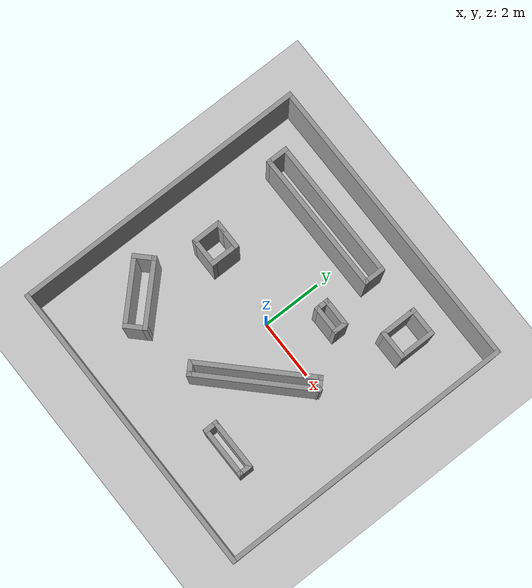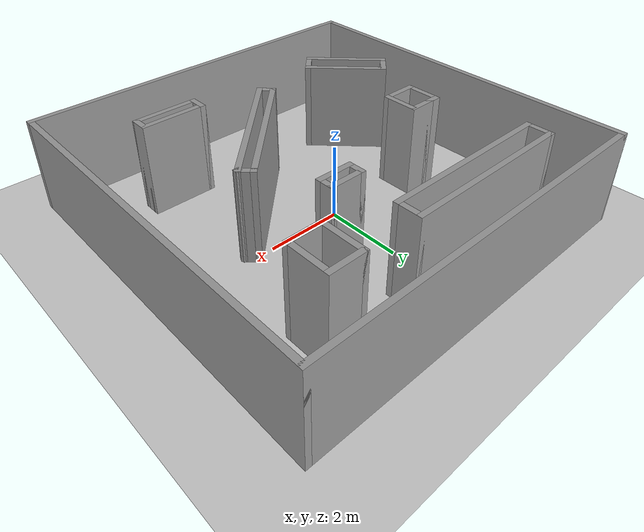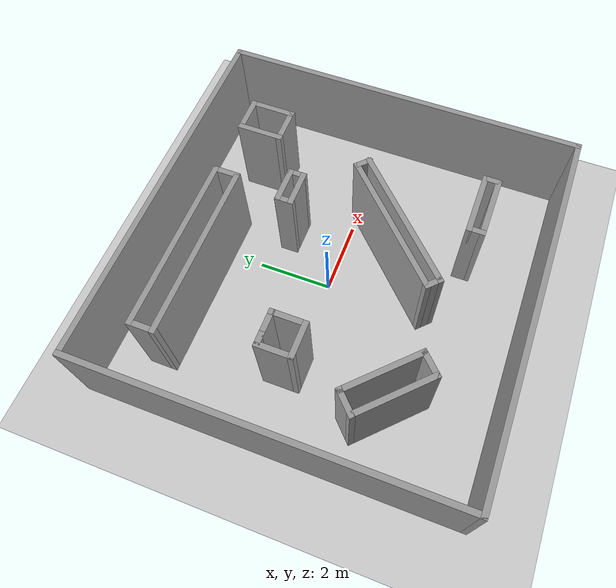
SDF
<sdf version="1.7">
 <world name="default">
  <light name="sun" type="directional">
   <pose>0 0 10 0 -0 0</pose>
   <diffuse>0.8 0.8 0.8 1</diffuse>
   <specular>0.2 0.2 0.2 1</specular>
   <attenuation>
    <range>1000</range>
    <constant>0.9</constant>
    <linear>0.01</linear>
    <quadratic>0.001</quadratic>
   </attenuation>
   <direction>-0.5 0.1 -0.9</direction>
   <spot><inner_angle>0</inner_angle><outer_angle>0</outer_angle><falloff>0</falloff></spot>
  </light>
  <model name="ground_plane">
   <static>1</static>
   <link name="link">
    <collision name="collision">
     <geometry><plane><normal>0 0 1</normal><size>100 100</size></plane></geometry>
     <surface><friction><ode><mu>100</mu><mu2>50</mu2></ode></friction></surface>
    </collision>
    <visual name="visual">
     <cast_shadows>0</cast_shadows>
     <geometry><plane><normal>0 0 1</normal><size>100 100</size></plane></geometry>
     <material>
      <script><uri>file://media/materials/scripts/gazebo.material</uri><name>Gazebo/Grey</name></script>
     </material>
    </visual>
   </link>
  </model>
  <gravity>0 0 -9.8</gravity>
  <magnetic_field>6e-06 2.3e-05 -4.2e-05</magnetic_field>
  <atmosphere type="adiabatic"/>
  <physics type="ode">
   <max_step_size>0.001</max_step_size>
   <real_time_factor>1</real_time_factor>
   <real_time_update_rate>1000</real_time_update_rate>
  </physics>
  <scene><ambient>0.4 0.4 0.4 1</ambient><background>0.7 0.7 0.7 1</background><shadows>1</shadows></scene>
  <audio><device>default</device></audio>
  <spherical_coordinates>
   <surface_model>EARTH_WGS84</surface_model>
   <latitude_deg>0</latitude_deg>
   <longitude_deg>0</longitude_deg>
   <elevation>0</elevation>
   <heading_deg>0</heading_deg>
  </spherical_coordinates>
  <model name="room">
   <pose>0.149799 -0.283213 0 0 -0 0</pose>
   <link name="Wall_0">
    <collision name="Wall_0_Collision">
     <geometry><box><size>10 0.15 2.5</size></box></geometry>
     <pose>0 0 1.25 0 -0 0</pose>
    </collision>
    <visual name="Wall_0_Visual">
     <pose>0 0 1.25 0 -0 0</pose>
     <geometry><box><size>10 0.15 2.5</size></box></geometry>
     <material>
      <script><uri>file://media/materials/scripts/gazebo.material</uri><name>Gazebo/Grey</name></script>
      <ambient>1 1 1 1</ambient>
     </material>
     <meta><layer>0</layer></meta>
    </visual>
    <pose>0 4.925 0 0 -0 0</pose>
   </link>
   <link name="Wall_1">
    <collision name="Wall_1_Collision">
     <geometry><box><size>10 0.15 2.5</size></box></geometry>
     <pose>0 0 1.25 0 -0 0</pose>
    </collision>
    <visual name="Wall_1_Visual">
     <pose>0 0 1.25 0 -0 0</pose>
     <geometry><box><size>10 0.15 2.5</size></box></geometry>
     <material>
      <script><uri>file://media/materials/scripts/gazebo.material</uri><name>Gazebo/Grey</name></script>
      <ambient>1 1 1 1</ambient>
     </material>
     <meta><layer>0</layer></meta>
    </visual>
    <pose>4.925 -0 0 0 -0 -1.5708</pose>
   </link>
   <link name="Wall_10">
    <collision name="Wall_10_Collision">
     <geometry><box><size>4 0.15 2.5</size></box></geometry>
     <pose>0 0 1.25 0 -0 0</pose>
    </collision>
    <visual name="Wall_10_Visual">
     <pose>0 0 1.25 0 -0 0</pose>
     <geometry><box><size>4 0.15 2.5</size></box></geometry>
     <material>
      <script><uri>file://media/materials/scripts/gazebo.material</uri><name>Gazebo/Grey</name></script>
      <ambient>1 1 1 1</ambient>
     </material>
     <meta><layer>0</layer></meta>
    </visual>
    <pose>0.947729 -0.990701 0 0 -0 -2.35619</pose>
   </link>
   <link name="Wall_11">
    <collision name="Wall_11_Collision">
     <geometry><box><size>0.5 0.15 2.5</size></box></geometry>
     <pose>0 0 1.25 0 -0 0</pose>
    </collision>
    <visual name="Wall_11_Visual">
     <pose>0 0 1.25 0 -0 0</pose>
     <geometry><box><size>0.5 0.15 2.5</size></box></geometry>
     <material>
      <script><uri>file://media/materials/scripts/gazebo.material</uri><name>Gazebo/Grey</name></script>
      <ambient>1 1 1 1</ambient>
     </material>
     <meta><layer>0</layer></meta>
    </visual>
    <pose>-0.289708 -2.47562 0 0 -0 -0.785398</pose>
   </link>
   <link name="Wall_12">
    <collision name="Wall_12_Collision">
     <geometry><box><size>4 0.15 2.5</size></box></geometry>
     <pose>0 0 1.25 0 -0 0</pose>
    </collision>
    <visual name="Wall_12_Visual">
     <pose>0 0 1.25 0 -0 0</pose>
     <geometry><box><size>4 0.15 2.5</size></box></geometry>
     <material>
      <script><uri>file://media/materials/scripts/gazebo.material</uri><name>Gazebo/Grey</name></script>
      <ambient>1 1 1 1</ambient>
     </material>
     <meta><layer>0</layer></meta>
    </visual>
    <pose>1.19522 -1.23819 0 0 -0 0.785398</pose>
   </link>
   <link name="Wall_13">
    <collision name="Wall_13_Collision">
     <geometry><box><size>0.15 0.15 2.5</size></box></geometry>
     <pose>0 0 1.25 0 -0 0</pose>
    </collision>
    <visual name="Wall_13_Visual">
     <pose>0 0 1.25 0 -0 0</pose>
     <geometry><box><size>0.15 0.15 2.5</size></box></geometry>
     <material>
      <script><uri>file://media/materials/scripts/gazebo.material</uri><name>Gazebo/Grey</name></script>
      <ambient>1 1 1 1</ambient>
     </material>
     <meta><layer>0</layer></meta>
    </visual>
    <pose>2.5564 0.122992 0 0 -0 0</pose>
   </link>
   <link name="Wall_14">
    <collision name="Wall_14_Collision">
     <geometry><box><size>0.5 0.15 2.5</size></box></geometry>
     <pose>0 0 1.25 0 -0 0</pose>
    </collision>
    <visual name="Wall_14_Visual">
     <pose>0 0 1.25 0 -0 0</pose>
     <geometry><box><size>0.5 0.15 2.5</size></box></geometry>
     <material>
      <script><uri>file://media/materials/scripts/gazebo.material</uri><name>Gazebo/Grey</name></script>
      <ambient>1 1 1 1</ambient>
     </material>
     <meta><layer>0</layer></meta>
    </visual>
    <pose>2.43265 0.246736 0 0 -0 2.35619</pose>
   </link>
   <link name="Wall_16">
    <collision name="Wall_16_Collision">
     <geometry><box><size>0.75 0.15 2.5</size></box></geometry>
     <pose>0 0 1.25 0 -0 0</pose>
    </collision>
    <visual name="Wall_16_Visual">
     <pose>0 0 1.25 0 -0 0</pose>
     <geometry><box><size>0.75 0.15 2.5</size></box></geometry>
     <material>
      <script><uri>file://media/materials/scripts/gazebo.material</uri><name>Gazebo/Grey</name></script>
      <ambient>1 1 1 1</ambient>
     </material>
     <meta><layer>0</layer></meta>
    </visual>
    <pose>-2.61514 0.827804 0 0 -0 0</pose>
   </link>
   <link name="Wall_17">
    <collision name="Wall_17_Collision">
     <geometry><box><size>1 0.15 2.5</size></box></geometry>
     <pose>0 0 1.25 0 -0 0</pose>
    </collision>
    <visual name="Wall_17_Visual">
     <pose>0 0 1.25 0 -0 0</pose>
     <geometry><box><size>1 0.15 2.5</size></box></geometry>
     <material>
      <script><uri>file://media/materials/scripts/gazebo.material</uri><name>Gazebo/Grey</name></script>
      <ambient>1 1 1 1</ambient>
     </material>
     <meta><layer>0</layer></meta>
    </visual>
    <pose>-2.31514 0.402803 0 0 -0 -1.5708</pose>
   </link>
   <link name="Wall_18">
    <collision name="Wall_18_Collision">
     <geometry><box><size>1 0.15 2.5</size></box></geometry>
     <pose>0 0 1.25 0 -0 0</pose>
    </collision>
    <visual name="Wall_18_Visual">
     <pose>0 0 1.25 0 -0 0</pose>
     <geometry><box><size>1 0.15 2.5</size></box></geometry>
     <material>
      <script><uri>file://media/materials/scripts/gazebo.material</uri><name>Gazebo/Grey</name></script>
      <ambient>1 1 1 1</ambient>
     </material>
     <meta><layer>0</layer></meta>
    </visual>
    <pose>-2.74014 -0.022197 0 0 -0 3.14159</pose>
   </link>
   <link name="Wall_19">
    <collision name="Wall_19_Collision">
     <geometry><box><size>1 0.15 2.5</size></box></geometry>
     <pose>0 0 1.25 0 -0 0</pose>
    </collision>
    <visual name="Wall_19_Visual">
     <pose>0 0 1.25 0 -0 0</pose>
     <geometry><box><size>1 0.15 2.5</size></box></geometry>
     <material>
      <script><uri>file://media/materials/scripts/gazebo.material</uri><name>Gazebo/Grey</name></script>
      <ambient>1 1 1 1</ambient>
     </material>
     <meta><layer>0</layer></meta>
    </visual>
    <pose>-3.16514 0.402803 0 0 -0 1.5708</pose>
   </link>
   <link name="Wall_2">
    <collision name="Wall_2_Collision">
     <geometry><box><size>10 0.15 2.5</size></box></geometry>
     <pose>0 0 1.25 0 -0 0</pose>
    </collision>
    <visual name="Wall_2_Visual">
     <pose>0 0 1.25 0 -0 0</pose>
     <geometry><box><size>10 0.15 2.5</size></box></geometry>
     <material>
      <script><uri>file://media/materials/scripts/gazebo.material</uri><name>Gazebo/Grey</name></script>
      <ambient>1 1 1 1</ambient>
     </material>
     <meta><layer>0</layer></meta>
    </visual>
    <pose>0 -4.925 0 0 -0 3.14159</pose>
   </link>
   <link name="Wall_20">
    <collision name="Wall_20_Collision">
     <geometry><box><size>0.4 0.15 2.5</size></box></geometry>
     <pose>0 0 1.25 0 -0 0</pose>
    </collision>
    <visual name="Wall_20_Visual">
     <pose>0 0 1.25 0 -0 0</pose>
     <geometry><box><size>0.4 0.15 2.5</size></box></geometry>
     <material>
      <script><uri>file://media/materials/scripts/gazebo.material</uri><name>Gazebo/Grey</name></script>
      <ambient>1 1 1 1</ambient>
     </material>
     <meta><layer>0</layer></meta>
    </visual>
    <pose>-3.04014 0.827804 0 0 -0 0</pose>
   </link>
   <link name="Wall_22">
    <collision name="Wall_22_Collision">
     <geometry><box><size>1 0.15 2.5</size></box></geometry>
     <pose>0 0 1.25 0 -0 0</pose>
    </collision>
    <visual name="Wall_22_Visual">
     <pose>0 0 1.25 0 -0 0</pose>
     <geometry><box><size>1 0.15 2.5</size></box></geometry>
     <material>
      <script><uri>file://media/materials/scripts/gazebo.material</uri><name>Gazebo/Grey</name></script>
      <ambient>1 1 1 1</ambient>
     </material>
     <meta><layer>0</layer></meta>
    </visual>
    <pose>1.08051 1.91834 0 0 -0 0</pose>
   </link>
   <link name="Wall_23">
    <collision name="Wall_23_Collision">
     <geometry><box><size>0.5 0.15 2.5</size></box></geometry>
     <pose>0 0 1.25 0 -0 0</pose>
    </collision>
    <visual name="Wall_23_Visual">
     <pose>0 0 1.25 0 -0 0</pose>
     <geometry><box><size>0.5 0.15 2.5</size></box></geometry>
     <material>
      <script><uri>file://media/materials/scripts/gazebo.material</uri><name>Gazebo/Grey</name></script>
      <ambient>1 1 1 1</ambient>
     </material>
     <meta><layer>0</layer></meta>
    </visual>
    <pose>1.50551 1.74334 0 0 -0 -1.5708</pose>
   </link>
   <link name="Wall_24">
    <collision name="Wall_24_Collision">
     <geometry><box><size>1 0.15 2.5</size></box></geometry>
     <pose>0 0 1.25 0 -0 0</pose>
    </collision>
    <visual name="Wall_24_Visual">
     <pose>0 0 1.25 0 -0 0</pose>
     <geometry><box><size>1 0.15 2.5</size></box></geometry>
     <material>
      <script><uri>file://media/materials/scripts/gazebo.material</uri><name>Gazebo/Grey</name></script>
      <ambient>1 1 1 1</ambient>
     </material>
     <meta><layer>0</layer></meta>
    </visual>
    <pose>1.08051 1.56835 0 0 -0 3.14159</pose>
   </link>
   <link name="Wall_25">
    <collision name="Wall_25_Collision">
     <geometry><box><size>0.5 0.15 2.5</size></box></geometry>
     <pose>0 0 1.25 0 -0 0</pose>
    </collision>
    <visual name="Wall_25_Visual">
     <pose>0 0 1.25 0 -0 0</pose>
     <geometry><box><size>0.5 0.15 2.5</size></box></geometry>
     <material>
      <script><uri>file://media/materials/scripts/gazebo.material</uri><name>Gazebo/Grey</name></script>
      <ambient>1 1 1 1</ambient>
     </material>
     <meta><layer>0</layer></meta>
    </visual>
    <pose>0.655507 1.74334 0 0 -0 1.5708</pose>
   </link>
   <link name="Wall_27">
    <collision name="Wall_27_Collision">
     <geometry><box><size>2.25 0.15 2.5</size></box></geometry>
     <pose>0 0 1.25 0 -0 0</pose>
    </collision>
    <visual name="Wall_27_Visual">
     <pose>0 0 1.25 0 -0 0</pose>
     <geometry><box><size>2.25 0.15 2.5</size></box></geometry>
     <material>
      <script><uri>file://media/materials/scripts/gazebo.material</uri><name>Gazebo/Grey</name></script>
      <ambient>1 1 1 1</ambient>
     </material>
     <meta><layer>0</layer></meta>
    </visual>
    <pose>-2.77071 -2.03956 0 0 -0 -0.785398</pose>
   </link>
   <link name="Wall_28">
    <collision name="Wall_28_Collision">
     <geometry><box><size>0.75 0.15 2.5</size></box></geometry>
     <pose>0 0 1.25 0 -0 0</pose>
    </collision>
    <visual name="Wall_28_Visual">
     <pose>0 0 1.25 0 -0 0</pose>
     <geometry><box><size>0.75 0.15 2.5</size></box></geometry>
     <material>
      <script><uri>file://media/materials/scripts/gazebo.material</uri><name>Gazebo/Grey</name></script>
      <ambient>1 1 1 1</ambient>
     </material>
     <meta><layer>0</layer></meta>
    </visual>
    <pose>-2.24038 -2.99415 0 0 -0 -2.35619</pose>
   </link>
   <link name="Wall_29">
    <collision name="Wall_29_Collision">
     <geometry><box><size>2.25 0.15 2.5</size></box></geometry>
     <pose>0 0 1.25 0 -0 0</pose>
    </collision>
    <visual name="Wall_29_Visual">
     <pose>0 0 1.25 0 -0 0</pose>
     <geometry><box><size>2.25 0.15 2.5</size></box></geometry>
     <material>
      <script><uri>file://media/materials/scripts/gazebo.material</uri><name>Gazebo/Grey</name></script>
      <ambient>1 1 1 1</ambient>
     </material>
     <meta><layer>0</layer></meta>
    </visual>
    <pose>-3.19498 -2.46382 0 0 -0 2.35619</pose>
   </link>
   <link name="Wall_3">
    <collision name="Wall_3_Collision">
     <geometry><box><size>10 0.15 2.5</size></box></geometry>
     <pose>0 0 1.25 0 -0 0</pose>
    </collision>
    <visual name="Wall_3_Visual">
     <pose>0 0 1.25 0 -0 0</pose>
     <geometry><box><size>10 0.15 2.5</size></box></geometry>
     <material>
      <script><uri>file://media/materials/scripts/gazebo.material</uri><name>Gazebo/Grey</name></script>
      <ambient>1 1 1 1</ambient>
     </material>
     <meta><layer>0</layer></meta>
    </visual>
    <pose>-4.925 -0 0 0 -0 1.5708</pose>
   </link>
   <link name="Wall_30">
    <collision name="Wall_30_Collision">
     <geometry><box><size>0.75 0.15 2.5</size></box></geometry>
     <pose>0 0 1.25 0 -0 0</pose>
    </collision>
    <visual name="Wall_30_Visual">
     <pose>0 0 1.25 0 -0 0</pose>
     <geometry><box><size>0.75 0.15 2.5</size></box></geometry>
     <material>
      <script><uri>file://media/materials/scripts/gazebo.material</uri><name>Gazebo/Grey</name></script>
      <ambient>1 1 1 1</ambient>
     </material>
     <meta><layer>0</layer></meta>
    </visual>
    <pose>-3.72531 -1.50923 0 0 -0 0.785398</pose>
   </link>
   <link name="Wall_32">
    <collision name="Wall_32_Collision">
     <geometry><box><size>1.75 0.15 2.5</size></box></geometry>
     <pose>0 0 1.25 0 -0 0</pose>
    </collision>
    <visual name="Wall_32_Visual">
     <pose>0 0 1.25 0 -0 0</pose>
     <geometry><box><size>1.75 0.15 2.5</size></box></geometry>
     <material>
      <script><uri>file://media/materials/scripts/gazebo.material</uri><name>Gazebo/Grey</name></script>
      <ambient>1 1 1 1</ambient>
     </material>
     <meta><layer>0</layer></meta>
    </visual>
    <pose>2.25785 -2.87279 0 0 -0 0</pose>
   </link>
   <link name="Wall_33">
    <collision name="Wall_33_Collision">
     <geometry><box><size>0.5 0.15 2.5</size></box></geometry>
     <pose>0 0 1.25 0 -0 0</pose>
    </collision>
    <visual name="Wall_33_Visual">
     <pose>0 0 1.25 0 -0 0</pose>
     <geometry><box><size>0.5 0.15 2.5</size></box></geometry>
     <material>
      <script><uri>file://media/materials/scripts/gazebo.material</uri><name>Gazebo/Grey</name></script>
      <ambient>1 1 1 1</ambient>
     </material>
     <meta><layer>0</layer></meta>
    </visual>
    <pose>3.05785 -3.04779 0 0 -0 -1.5708</pose>
   </link>
   <link name="Wall_34">
    <collision name="Wall_34_Collision">
     <geometry><box><size>1.75 0.15 2.5</size></box></geometry>
     <pose>0 0 1.25 0 -0 0</pose>
    </collision>
    <visual name="Wall_34_Visual">
     <pose>0 0 1.25 0 -0 0</pose>
     <geometry><box><size>1.75 0.15 2.5</size></box></geometry>
     <material>
      <script><uri>file://media/materials/scripts/gazebo.material</uri><name>Gazebo/Grey</name></script>
      <ambient>1 1 1 1</ambient>
     </material>
     <meta><layer>0</layer></meta>
    </visual>
    <pose>2.25785 -3.22279 0 0 -0 3.14159</pose>
   </link>
   <link name="Wall_35">
    <collision name="Wall_35_Collision">
     <geometry><box><size>0.5 0.15 2.5</size></box></geometry>
     <pose>0 0 1.25 0 -0 0</pose>
    </collision>
    <visual name="Wall_35_Visual">
     <pose>0 0 1.25 0 -0 0</pose>
     <geometry><box><size>0.5 0.15 2.5</size></box></geometry>
     <material>
      <script><uri>file://media/materials/scripts/gazebo.material</uri><name>Gazebo/Grey</name></script>
      <ambient>1 1 1 1</ambient>
     </material>
     <meta><layer>0</layer></meta>
    </visual>
    <pose>1.45785 -3.04779 0 0 -0 1.5708</pose>
   </link>
   <link name="Wall_37">
    <collision name="Wall_37_Collision">
     <geometry><box><size>1 0.15 2.5</size></box></geometry>
     <pose>0 0 1.25 0 -0 0</pose>
    </collision>
    <visual name="Wall_37_Visual">
     <pose>0 0 1.25 0 -0 0</pose>
     <geometry><box><size>1 0.15 2.5</size></box></geometry>
     <material>
      <script><uri>file://media/materials/scripts/gazebo.material</uri><name>Gazebo/Grey</name></script>
      <ambient>1 1 1 1</ambient>
     </material>
     <meta><layer>0</layer></meta>
    </visual>
    <pose>2.86786 3.74082 0 0 -0 0</pose>
   </link>
   <link name="Wall_38">
    <collision name="Wall_38_Collision">
     <geometry><box><size>1.25 0.15 2.5</size></box></geometry>
     <pose>0 0 1.25 0 -0 0</pose>
    </collision>
    <visual name="Wall_38_Visual">
     <pose>0 0 1.25 0 -0 0</pose>
     <geometry><box><size>1.25 0.15 2.5</size></box></geometry>
     <material>
      <script><uri>file://media/materials/scripts/gazebo.material</uri><name>Gazebo/Grey</name></script>
      <ambient>1 1 1 1</ambient>
     </material>
     <meta><layer>0</layer></meta>
    </visual>
    <pose>3.29286 3.19082 0 0 -0 -1.5708</pose>
   </link>
   <link name="Wall_39">
    <collision name="Wall_39_Collision">
     <geometry><box><size>1 0.15 2.5</size></box></geometry>
     <pose>0 0 1.25 0 -0 0</pose>
    </collision>
    <visual name="Wall_39_Visual">
     <pose>0 0 1.25 0 -0 0</pose>
     <geometry><box><size>1 0.15 2.5</size></box></geometry>
     <material>
      <script><uri>file://media/materials/scripts/gazebo.material</uri><name>Gazebo/Grey</name></script>
      <ambient>1 1 1 1</ambient>
     </material>
     <meta><layer>0</layer></meta>
    </visual>
    <pose>2.86786 2.64082 0 0 -0 3.14159</pose>
   </link>
   <link name="Wall_40">
    <collision name="Wall_40_Collision">
     <geometry><box><size>1.25 0.15 2.5</size></box></geometry>
     <pose>0 0 1.25 0 -0 0</pose>
    </collision>
    <visual name="Wall_40_Visual">
     <pose>0 0 1.25 0 -0 0</pose>
     <geometry><box><size>1.25 0.15 2.5</size></box></geometry>
     <material>
      <script><uri>file://media/materials/scripts/gazebo.material</uri><name>Gazebo/Grey</name></script>
      <ambient>1 1 1 1</ambient>
     </material>
     <meta><layer>0</layer></meta>
    </visual>
    <pose>2.44286 3.19082 0 0 -0 1.5708</pose>
   </link>
   <link name="Wall_5">
    <collision name="Wall_5_Collision">
     <geometry><box><size>4.75 0.15 2.5</size></box></geometry>
     <pose>0 0 1.25 0 -0 0</pose>
    </collision>
    <visual name="Wall_5_Visual">
     <pose>0 0 1.25 0 -0 0</pose>
     <geometry><box><size>4.75 0.15 2.5</size></box></geometry>
     <material>
      <script><uri>file://media/materials/scripts/gazebo.material</uri><name>Gazebo/Grey</name></script>
      <ambient>1 1 1 1</ambient>
     </material>
     <meta><layer>0</layer></meta>
    </visual>
    <pose>-1.38907 3.78282 0 0 -0 0</pose>
   </link>
   <link name="Wall_6">
    <collision name="Wall_6_Collision">
     <geometry><box><size>0.75 0.15 2.5</size></box></geometry>
     <pose>0 0 1.25 0 -0 0</pose>
    </collision>
    <visual name="Wall_6_Visual">
     <pose>0 0 1.25 0 -0 0</pose>
     <geometry><box><size>0.75 0.15 2.5</size></box></geometry>
     <material>
      <script><uri>file://media/materials/scripts/gazebo.material</uri><name>Gazebo/Grey</name></script>
      <ambient>1 1 1 1</ambient>
     </material>
     <meta><layer>0</layer></meta>
    </visual>
    <pose>0.91093 3.48282 0 0 -0 -1.5708</pose>
   </link>
   <link name="Wall_7">
    <collision name="Wall_7_Collision">
     <geometry><box><size>4.75 0.15 2.5</size></box></geometry>
     <pose>0 0 1.25 0 -0 0</pose>
    </collision>
    <visual name="Wall_7_Visual">
     <pose>0 0 1.25 0 -0 0</pose>
     <geometry><box><size>4.75 0.15 2.5</size></box></geometry>
     <material>
      <script><uri>file://media/materials/scripts/gazebo.material</uri><name>Gazebo/Grey</name></script>
      <ambient>1 1 1 1</ambient>
     </material>
     <meta><layer>0</layer></meta>
    </visual>
    <pose>-1.38907 3.18282 0 0 -0 3.14159</pose>
   </link>
   <link name="Wall_8">
    <collision name="Wall_8_Collision">
     <geometry><box><size>0.75 0.15 2.5</size></box></geometry>
     <pose>0 0 1.25 0 -0 0</pose>
    </collision>
    <visual name="Wall_8_Visual">
     <pose>0 0 1.25 0 -0 0</pose>
     <geometry><box><size>0.75 0.15 2.5</size></box></geometry>
     <material>
      <script><uri>file://media/materials/scripts/gazebo.material</uri><name>Gazebo/Grey</name></script>
      <ambient>1 1 1 1</ambient>
     </material>
     <meta><layer>0</layer></meta>
    </visual>
    <pose>-3.68907 3.48282 0 0 -0 1.5708</pose>
   </link>
   <static>1</static>
  </model>
 </world>
</sdf>
